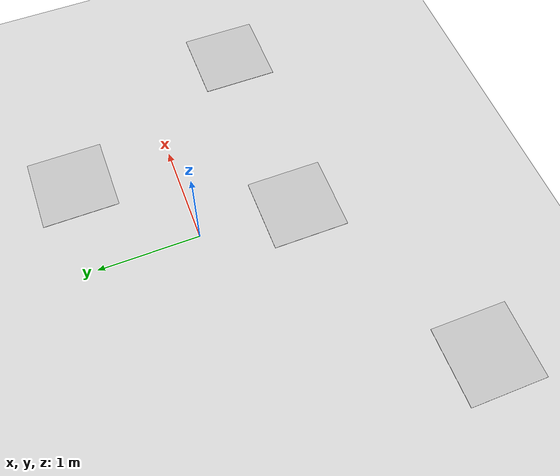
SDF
<?xml version="1.0" ?>
<sdf version="1.4">
  <world name="default">

    <!-- Plug-in to get sensor data for UAV -->
    <plugin name="ros_interface_plugin" filename="librotors_gazebo_ros_interface_plugin.so"></plugin>

    <physics type="ode">
      <gravity>0 0 -9.81</gravity>
      <ode>
        <solver>
          <type>quick</type>
	  <iters>30</iters>
        </solver>
        <constraints>
          <cfm>0.0</cfm>
          <erp>0.2</erp>
          <contact_max_correcting_vel>100.0</contact_max_correcting_vel>
          <contact_surface_layer>0.001</contact_surface_layer>
        </constraints>
      </ode>
      <max_step_size>0.001</max_step_size>
      <real_time_factor>1</real_time_factor>
      <real_time_update_rate>1000</real_time_update_rate>
    </physics>

    <!-- Ground Plane -->
    <model name='soil_ground_plane'>
      <static>1</static>
      <link name='link'>
        <collision name='collision'>
          <geometry>
            <plane>
              <normal>0 0 1</normal>
              <size>100 100</size>
            </plane>
          </geometry>
          <surface>
            <friction>
              <ode>
                <mu>100</mu>
                <mu2>50</mu2>
              </ode>
            </friction>
            <bounce/>
            <contact>
              <ode/>
            </contact>
          </surface>
          <max_contacts>10</max_contacts>
        </collision>
        <visual name='visual'>
          <cast_shadows>0</cast_shadows>
          <geometry>
            <plane>
              <normal>0 0 1</normal>
              <size>100 100</size>
            </plane>
          </geometry>
          <material>
	    Gazebo/White
          </material>
        </visual>
        <velocity_decay>
          <linear>0</linear>
          <angular>0</angular>
        </velocity_decay>
        <self_collide>0</self_collide>
        <kinematic>0</kinematic>
        <gravity>1</gravity>
      </link>
      <pose>5 -5 0 0 -0 0</pose>
    </model>

    <light type="directional" name="my_light">
      <pose>-100 100 30 0 0 0</pose>
      <diffuse>.9 .9 .9 1</diffuse>
      <specular>.1 .1 .1 1</specular>
      <attenuation>
        <range>20</range>
      </attenuation>
      <direction>0 0 -1</direction>
      <cast_shadows>false</cast_shadows>
    </light>

    <include>
      <pose>2 -1 0 0 0 0</pose>
      <uri>model://april_tag0</uri>
    </include>
    <include>
      <pose>0 -1 0 0 0 0</pose>
      <uri>model://april_tag1</uri>
    </include>
    <include>
      <pose>-2 -2 0 0 0 0</pose>
      <uri>model://april_tag2</uri>
    </include>
    <include>
      <pose>1 1 0 0 0 0</pose>
      <uri>model://april_tag3</uri>
    </include>

</world>
</sdf>

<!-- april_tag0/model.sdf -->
<sdf version="1.4">
<model name="april_tag0">
  <static>true</static>
    <link name="link">
      <collision name="collision">
          <geometry>
          <box>
            <size>0.75 0.75 0.01</size>
          </box>
        </geometry>
      </collision>
      <visual name="visual">
	<pose>0 0 0 0 0 0</pose>
        <cast_shadows>false</cast_shadows>
        <geometry>
          <box>
            <size>0.75 0.75 0.005</size>
          </box>
        </geometry>
        <material>
          <script>
            <uri>model://april_tag0/materials/scripts/</uri>
	          <uri>model://april_tag0/materials/textures</uri>
            <name>AprilTag/Tag0</name>
          </script>
        </material>
      </visual>
    </link>
  </model>
</sdf>

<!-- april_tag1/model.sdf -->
<sdf version="1.4">
<model name="april_tag1">
  <static>true</static>
    <link name="link">
      <collision name="collision">
          <geometry>
          <box>
            <size>0.75 0.75 0.01</size>
          </box>
        </geometry>
      </collision>
      <visual name="visual">
	<pose>0 0 0 0 0 0</pose>
        <cast_shadows>false</cast_shadows>
        <geometry>
          <box>
            <size>0.75 0.75 0.005</size>
          </box>
        </geometry>
        <material>
          <script>
            <uri>model://april_tag1/materials/scripts/</uri>
	          <uri>model://april_tag1/materials/textures</uri>
            <name>AprilTag/Tag1</name>
          </script>
        </material>
      </visual>
    </link>
  </model>
</sdf>

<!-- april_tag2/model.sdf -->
<sdf version="1.4">
<model name="april_tag2">
  <static>true</static>
    <link name="link">
      <collision name="collision">
          <geometry>
          <box>
            <size>0.75 0.75 0.01</size>
          </box>
        </geometry>
      </collision>
      <visual name="visual">
	<pose>0 0 0 0 0 0</pose>
        <cast_shadows>false</cast_shadows>
        <geometry>
          <box>
            <size>0.75 0.75 0.005</size>
          </box>
        </geometry>
        <material>
          <script>
            <uri>model://april_tag2/materials/scripts/</uri>
	          <uri>model://april_tag2/materials/textures</uri>
            <name>AprilTag/Tag2</name>
          </script>
        </material>
      </visual>
    </link>
  </model>
</sdf>

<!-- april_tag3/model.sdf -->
<sdf version="1.4">
<model name="april_tag3">
  <static>true</static>
    <link name="link">
      <collision name="collision">
          <geometry>
          <box>
            <size>0.75 0.75 0.01</size>
          </box>
        </geometry>
      </collision>
      <visual name="visual">
	<pose>0 0 0 0 0 0</pose>
        <cast_shadows>false</cast_shadows>
        <geometry>
          <box>
            <size>0.75 0.75 0.005</size>
          </box>
        </geometry>
        <material>
          <script>
            <uri>model://april_tag3/materials/scripts/</uri>
	          <uri>model://april_tag3/materials/textures</uri>
            <name>AprilTag/Tag3</name>
          </script>
        </material>
      </visual>
    </link>
  </model>
</sdf>
